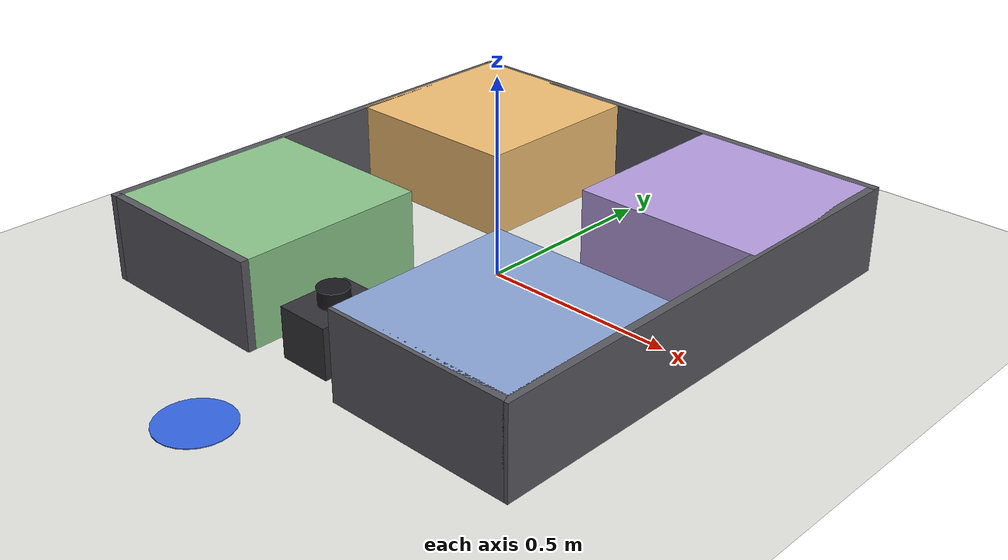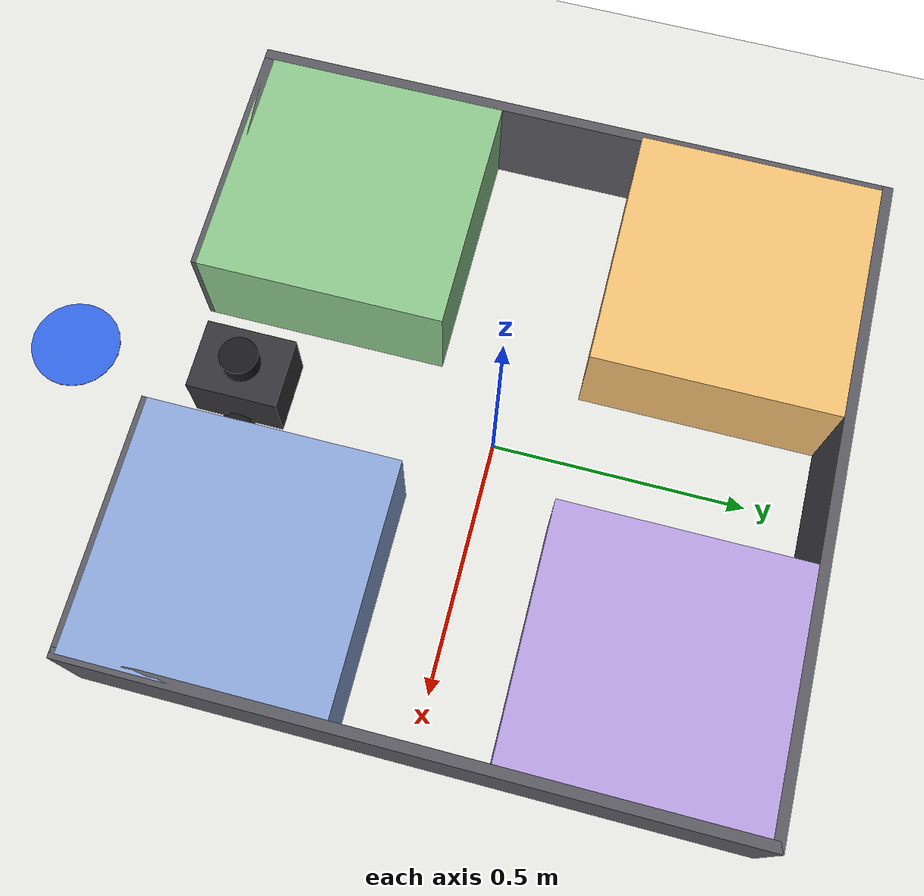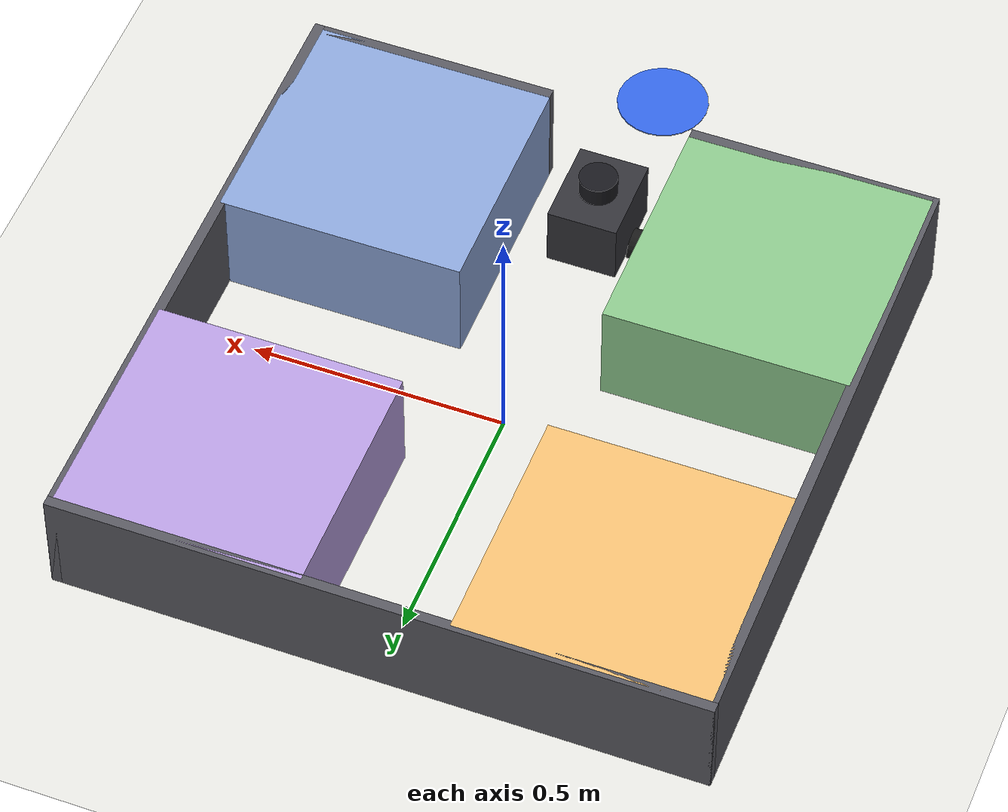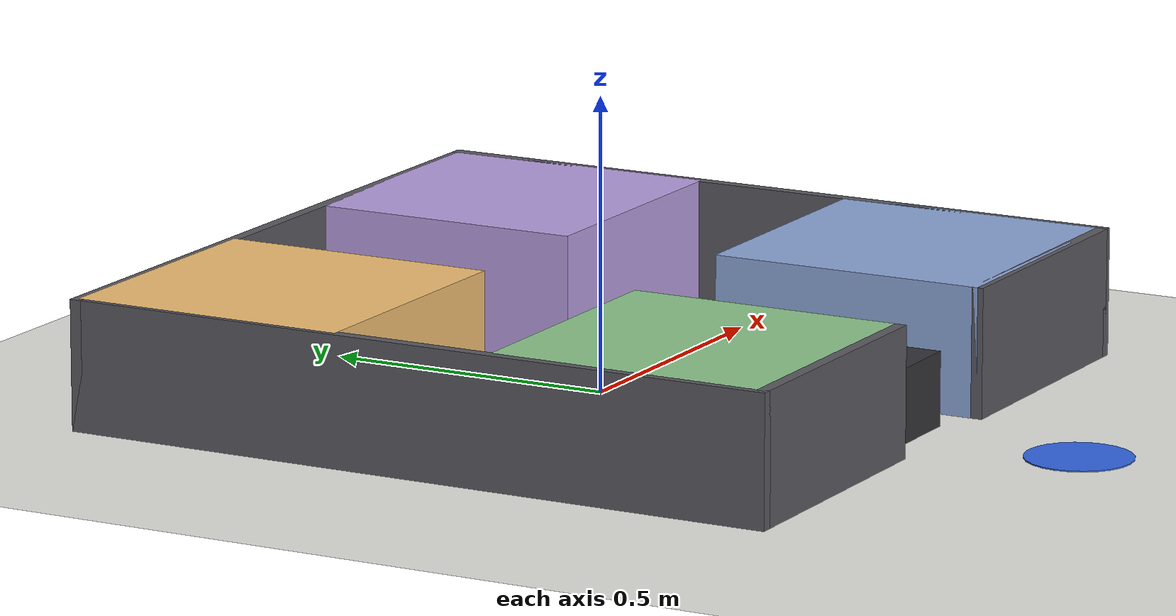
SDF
<?xml version="1.0"?>
<sdf version="1.9">
  <world name="flyto_mission_arena">
    <physics name="default_physics" type="dart">
      <max_step_size>0.001</max_step_size>
      <real_time_factor>1.0</real_time_factor>
    </physics>
    <gravity>0 0 -9.80665</gravity>

    <plugin filename="gz-sim-physics-system" name="gz::sim::systems::Physics"/>
    <plugin filename="gz-sim-user-commands-system" name="gz::sim::systems::UserCommands"/>
    <plugin filename="gz-sim-scene-broadcaster-system" name="gz::sim::systems::SceneBroadcaster"/>
    <plugin filename="gz-sim-sensors-system" name="gz::sim::systems::Sensors">
      <render_engine>ogre2</render_engine>
    </plugin>

    <scene>
      <ambient>0.8 0.8 0.8 1</ambient>
      <background>0.85 0.87 0.9 1</background>
    </scene>

    <light type="directional" name="sun">
      <pose>0 0 4 0 0 0</pose>
      <diffuse>0.9 0.9 0.9 1</diffuse>
      <direction>-0.3 -0.3 -1</direction>
    </light>

    <model name="floor">
      <static>true</static>
      <link name="link">
        <collision name="c"><geometry><plane><normal>0 0 1</normal><size>6 6</size></plane></geometry></collision>
        <visual name="v">
          <geometry><plane><normal>0 0 1</normal><size>6 6</size></plane></geometry>
          <material><ambient>0.9 0.9 0.88 1</ambient><diffuse>0.9 0.9 0.88 1</diffuse></material>
        </visual>
      </link>
    </model>

    <model name="zone_1">
      <static>true</static>
      <pose>-0.380 -0.380 0.110 0 0 0</pose>
      <link name="link">
        <collision name="c"><geometry><box><size>0.480 0.480 0.220</size></box></geometry></collision>
        <visual name="v">
          <geometry><box><size>0.480 0.480 0.220</size></box></geometry>
          <material><ambient>0.55 0.78 0.55 1</ambient><diffuse>0.55 0.78 0.55 1</diffuse></material>
        </visual>
      </link>
    </model>
    <model name="zone_2">
      <static>true</static>
      <pose>0.380 -0.380 0.110 0 0 0</pose>
      <link name="link">
        <collision name="c"><geometry><box><size>0.480 0.480 0.220</size></box></geometry></collision>
        <visual name="v">
          <geometry><box><size>0.480 0.480 0.220</size></box></geometry>
          <material><ambient>0.55 0.65 0.85 1</ambient><diffuse>0.55 0.65 0.85 1</diffuse></material>
        </visual>
      </link>
    </model>
    <model name="zone_3">
      <static>true</static>
      <pose>-0.380 0.380 0.110 0 0 0</pose>
      <link name="link">
        <collision name="c"><geometry><box><size>0.480 0.480 0.220</size></box></geometry></collision>
        <visual name="v">
          <geometry><box><size>0.480 0.480 0.220</size></box></geometry>
          <material><ambient>0.95 0.75 0.45 1</ambient><diffuse>0.95 0.75 0.45 1</diffuse></material>
        </visual>
      </link>
    </model>
    <model name="zone_4">
      <static>true</static>
      <pose>0.380 0.380 0.110 0 0 0</pose>
      <link name="link">
        <collision name="c"><geometry><box><size>0.480 0.480 0.220</size></box></geometry></collision>
        <visual name="v">
          <geometry><box><size>0.480 0.480 0.220</size></box></geometry>
          <material><ambient>0.72 0.62 0.88 1</ambient><diffuse>0.72 0.62 0.88 1</diffuse></material>
        </visual>
      </link>
    </model>
    <model name="frame_n">
      <static>true</static>
      <pose>0.000 0.620 0.110 0 0 0</pose>
      <link name="link">
        <collision name="c"><geometry><box><size>1.260 0.020 0.220</size></box></geometry></collision>
        <visual name="v">
          <geometry><box><size>1.260 0.020 0.220</size></box></geometry>
          <material><ambient>0.35 0.35 0.38 1</ambient><diffuse>0.35 0.35 0.38 1</diffuse></material>
        </visual>
      </link>
    </model>
    <model name="frame_e">
      <static>true</static>
      <pose>0.620 0.000 0.110 0 0 0</pose>
      <link name="link">
        <collision name="c"><geometry><box><size>0.020 1.260 0.220</size></box></geometry></collision>
        <visual name="v">
          <geometry><box><size>0.020 1.260 0.220</size></box></geometry>
          <material><ambient>0.35 0.35 0.38 1</ambient><diffuse>0.35 0.35 0.38 1</diffuse></material>
        </visual>
      </link>
    </model>

    <model name="frame_s_west">
      <static>true</static>
      <pose>-0.380 -0.620 0.110 0 0 0</pose>
      <link name="link">
        <collision name="c"><geometry><box><size>0.480 0.020 0.220</size></box></geometry></collision>
        <visual name="v">
          <geometry><box><size>0.480 0.020 0.220</size></box></geometry>
          <material><ambient>0.35 0.35 0.38 1</ambient><diffuse>0.35 0.35 0.38 1</diffuse></material>
        </visual>
      </link>
    </model>
    <model name="frame_s_east">
      <static>true</static>
      <pose>0.380 -0.620 0.110 0 0 0</pose>
      <link name="link">
        <collision name="c"><geometry><box><size>0.480 0.020 0.220</size></box></geometry></collision>
        <visual name="v">
          <geometry><box><size>0.480 0.020 0.220</size></box></geometry>
          <material><ambient>0.35 0.35 0.38 1</ambient><diffuse>0.35 0.35 0.38 1</diffuse></material>
        </visual>
      </link>
    </model>
    <model name="frame_w">
      <static>true</static>
      <pose>-0.620 0.000 0.110 0 0 0</pose>
      <link name="link">
        <collision name="c"><geometry><box><size>0.020 1.260 0.220</size></box></geometry></collision>
        <visual name="v">
          <geometry><box><size>0.020 1.260 0.220</size></box></geometry>
          <material><ambient>0.35 0.35 0.38 1</ambient><diffuse>0.35 0.35 0.38 1</diffuse></material>
        </visual>
      </link>
    </model>
    <!-- Where the robot starts, matching the layout: outside the frame, facing
         the south entrance to the centre aisle. -->
    <model name="robot_start_marker">
      <static>true</static>
      <pose>0 -0.870 0.001 0 0 0</pose>
      <link name="link">
        <visual name="v">
          <geometry><cylinder><radius>0.09</radius><length>0.002</length></cylinder></geometry>
          <material><ambient>0.2 0.4 0.9 1</ambient><diffuse>0.2 0.4 0.9 1</diffuse></material>
        </visual>
      </link>
    </model>
    <include>
      <uri>model://flyto_tb3_burger</uri>
      <name>flyto_tb3_burger</name>
      <pose>0 -0.50 0 0 0 1.5708</pose>
    </include>
  </world>
</sdf>

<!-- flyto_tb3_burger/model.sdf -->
<sdf version="1.9">
  <model name="flyto_tb3_burger">
    <pose>0 0 0.033 0 0 0</pose>

    <link name="base_link">
      <inertial>
        <mass>0.9</mass>
        <inertia><ixx>0.0035</ixx><iyy>0.0035</iyy><izz>0.0050</izz>
                 <ixy>0</ixy><ixz>0</ixz><iyz>0</iyz></inertia>
      </inertial>
      <collision name="chassis">
        <pose>0 0 0.063 0 0 0</pose>
        <geometry><box><size>0.178 0.138 0.126</size></box></geometry>
      </collision>
      <visual name="chassis">
        <pose>0 0 0.063 0 0 0</pose>
        <geometry><box><size>0.178 0.138 0.126</size></box></geometry>
        <material><ambient>0.15 0.15 0.17 1</ambient><diffuse>0.2 0.2 0.22 1</diffuse></material>
      </visual>
      <visual name="lidar_housing">
        <pose>0 0 0.145 0 0 0</pose>
        <geometry><cylinder><radius>0.0375</radius><length>0.040</length></cylinder></geometry>
        <material><ambient>0.05 0.05 0.06 1</ambient><diffuse>0.1 0.1 0.12 1</diffuse></material>
      </visual>

      <sensor name="lds" type="gpu_lidar">
        <pose>0 0 0.159 0 0 0</pose>
        <topic>/flyto/scan</topic>
        <update_rate>5</update_rate>
        <always_on>1</always_on>
        <visualize>false</visualize>
        <lidar>
          <scan><horizontal>
            <samples>360</samples>
            <resolution>1</resolution>
            <min_angle>-3.141593</min_angle>
            <max_angle>3.141593</max_angle>
          </horizontal></scan>
          <range><min>0.12</min><max>3.5</max><resolution>0.015</resolution></range>
          <!-- The real unit is noisy. A noiseless sweep would make the sector
               minima look steadier than they will be on the day. -->
          <noise><type>gaussian</type><mean>0.0</mean><stddev>0.01</stddev></noise>
        </lidar>
      </sensor>
    </link>

    <link name="left_wheel">
      <pose>0 0.080 0 -1.570796 0 0</pose>
      <inertial><mass>0.028</mass>
        <inertia><ixx>1.1e-5</ixx><iyy>1.1e-5</iyy><izz>1.8e-5</izz>
                 <ixy>0</ixy><ixz>0</ixz><iyz>0</iyz></inertia></inertial>
      <collision name="c"><geometry><cylinder><radius>0.033</radius><length>0.018</length></cylinder></geometry>
        <surface><friction><ode><mu>1.0</mu><mu2>1.0</mu2></ode></friction></surface></collision>
      <visual name="v"><geometry><cylinder><radius>0.033</radius><length>0.018</length></cylinder></geometry>
        <material><ambient>0.05 0.05 0.05 1</ambient><diffuse>0.1 0.1 0.1 1</diffuse></material></visual>
    </link>

    <link name="right_wheel">
      <pose>0 -0.080 0 -1.570796 0 0</pose>
      <inertial><mass>0.028</mass>
        <inertia><ixx>1.1e-5</ixx><iyy>1.1e-5</iyy><izz>1.8e-5</izz>
                 <ixy>0</ixy><ixz>0</ixz><iyz>0</iyz></inertia></inertial>
      <collision name="c"><geometry><cylinder><radius>0.033</radius><length>0.018</length></cylinder></geometry>
        <surface><friction><ode><mu>1.0</mu><mu2>1.0</mu2></ode></friction></surface></collision>
      <visual name="v"><geometry><cylinder><radius>0.033</radius><length>0.018</length></cylinder></geometry>
        <material><ambient>0.05 0.05 0.05 1</ambient><diffuse>0.1 0.1 0.1 1</diffuse></material></visual>
    </link>

    <link name="caster">
      <pose>-0.075 0 -0.020 0 0 0</pose>
      <inertial><mass>0.005</mass>
        <inertia><ixx>1e-6</ixx><iyy>1e-6</iyy><izz>1e-6</izz>
                 <ixy>0</ixy><ixz>0</ixz><iyz>0</iyz></inertia></inertial>
      <collision name="c"><geometry><sphere><radius>0.013</radius></sphere></geometry>
        <surface><friction><ode><mu>0.01</mu><mu2>0.01</mu2></ode></friction></surface></collision>
      <visual name="v"><geometry><sphere><radius>0.013</radius></sphere></geometry>
        <material><ambient>0.3 0.3 0.3 1</ambient></material></visual>
    </link>

    <joint name="left_wheel_joint" type="revolute">
      <parent>base_link</parent><child>left_wheel</child>
      <axis><xyz>0 1 0</xyz></axis>
    </joint>
    <joint name="right_wheel_joint" type="revolute">
      <parent>base_link</parent><child>right_wheel</child>
      <axis><xyz>0 1 0</xyz></axis>
    </joint>
    <joint name="caster_joint" type="ball">
      <parent>base_link</parent><child>caster</child>
    </joint>

    <plugin filename="gz-sim-diff-drive-system" name="gz::sim::systems::DiffDrive">
      <left_joint>left_wheel_joint</left_joint>
      <right_joint>right_wheel_joint</right_joint>
      <wheel_separation>0.160</wheel_separation>
      <wheel_radius>0.033</wheel_radius>
      <topic>/flyto/cmd_vel</topic>
      <odom_topic>/flyto/odom</odom_topic>
      <frame_id>odom</frame_id>
      <child_frame_id>base_link</child_frame_id>
      <odom_publish_frequency>30</odom_publish_frequency>
      <max_linear_acceleration>1.0</max_linear_acceleration>
    </plugin>
  </model>
</sdf>
